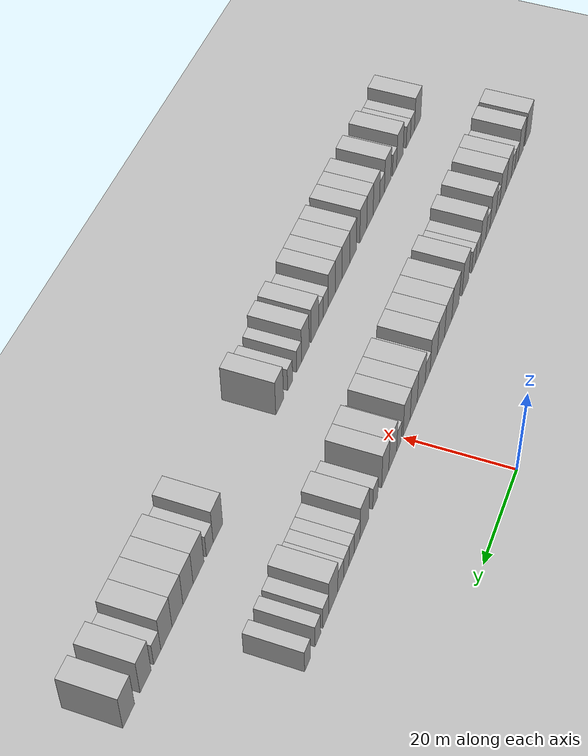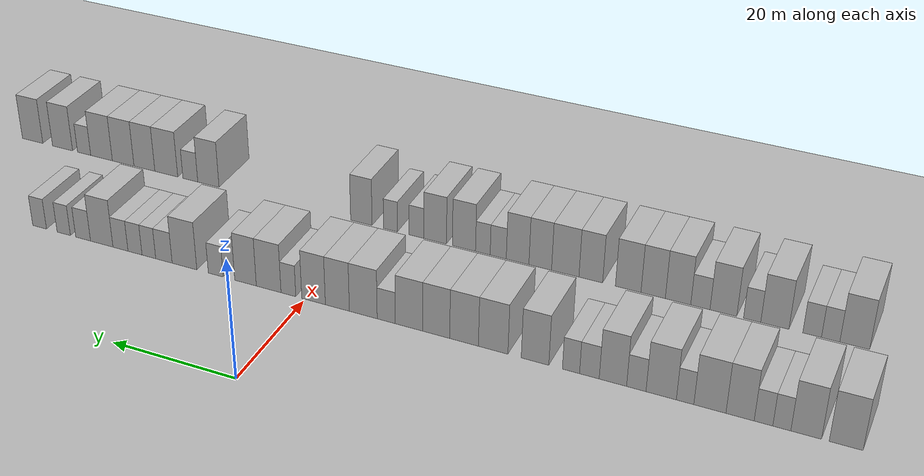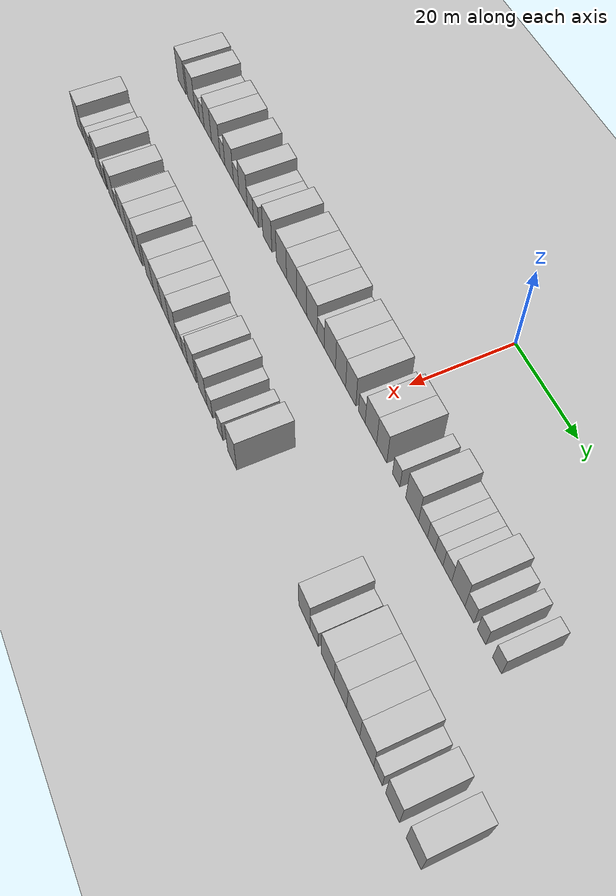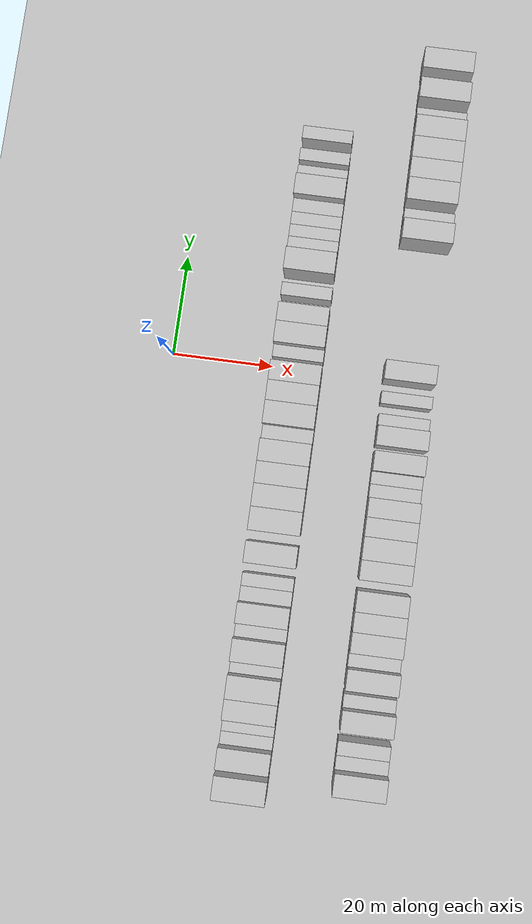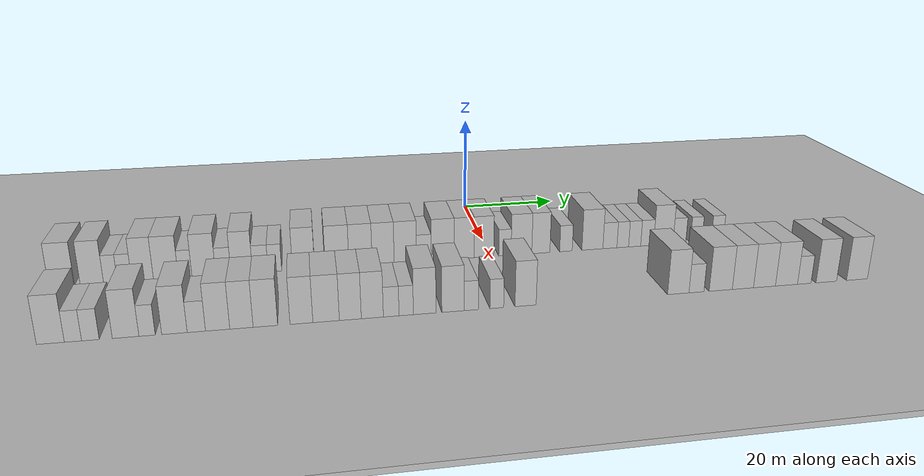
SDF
<sdf version="1.6">
 <world name="default">
  <include><name>ground_plane_1</name><uri>model://HANNAS_ground_plane</uri></include>
  <include>
   <name>ground_plane_2</name>
   <uri>model://HANNAS_ground_plane</uri>
   <pose>100 0 0  0 0 0</pose>
  </include>
  <model name="building_32">
   <static>1</static>
   <pose>25.0000 -79.7604 0 0.000000 0.000000 0.000000</pose>
   <link name="link">
    <pose>0 0 4.50 0 0 0</pose>
    <collision name="collision"><geometry><box><size>10.0000 4.4144 9.0000</size></box></geometry></collision>
    <visual name="visual">
     <cast_shadows>0</cast_shadows>
     <geometry><box><size>10.0000 4.4144 9.0000</size></box></geometry>
     <material>
      <script>
       <uri>model://HANNAS_wall/materials/scripts</uri>
       <uri>model://HANNAS_wall/materials/textures</uri>
       <name>vrc/HANNAS_wall</name>
      </script>
     </material>
    </visual>
   </link>
  </model>
  <model name="building_33">
   <static>1</static>
   <pose>25.0000 -74.5264 0 0.000000 0.000000 0.000000</pose>
   <link name="link">
    <pose>0 0 4.50 0 0 0</pose>
    <collision name="collision"><geometry><box><size>10.0000 4.0536 9.0000</size></box></geometry></collision>
    <visual name="visual">
     <cast_shadows>0</cast_shadows>
     <geometry><box><size>10.0000 4.0536 9.0000</size></box></geometry>
     <material>
      <script>
       <uri>model://HANNAS_wall/materials/scripts</uri>
       <uri>model://HANNAS_wall/materials/textures</uri>
       <name>vrc/HANNAS_wall</name>
      </script>
     </material>
    </visual>
   </link>
  </model>
  <model name="building_34">
   <static>1</static>
   <pose>25.0000 -71.2966 0 0.000000 0.000000 0.000000</pose>
   <link name="link">
    <pose>0 0 3.00 0 0 0</pose>
    <collision name="collision"><geometry><box><size>10.0000 2.4060 6.0000</size></box></geometry></collision>
    <visual name="visual">
     <cast_shadows>0</cast_shadows>
     <geometry><box><size>10.0000 2.4060 6.0000</size></box></geometry>
     <material>
      <script>
       <uri>model://HANNAS_wall/materials/scripts</uri>
       <uri>model://HANNAS_wall/materials/textures</uri>
       <name>vrc/HANNAS_wall</name>
      </script>
     </material>
    </visual>
   </link>
  </model>
  <model name="building_35">
   <static>1</static>
   <pose>25.0000 -68.8379 0 0.000000 0.000000 0.000000</pose>
   <link name="link">
    <pose>0 0 3.00 0 0 0</pose>
    <collision name="collision"><geometry><box><size>10.0000 2.5114 6.0000</size></box></geometry></collision>
    <visual name="visual">
     <cast_shadows>0</cast_shadows>
     <geometry><box><size>10.0000 2.5114 6.0000</size></box></geometry>
     <material>
      <script>
       <uri>model://HANNAS_wall/materials/scripts</uri>
       <uri>model://HANNAS_wall/materials/textures</uri>
       <name>vrc/HANNAS_wall</name>
      </script>
     </material>
    </visual>
   </link>
  </model>
  <model name="building_36">
   <static>1</static>
   <pose>25.0000 -65.6650 0 0.000000 0.000000 0.000000</pose>
   <link name="link">
    <pose>0 0 4.50 0 0 0</pose>
    <collision name="collision"><geometry><box><size>10.0000 3.8343 9.0000</size></box></geometry></collision>
    <visual name="visual">
     <cast_shadows>0</cast_shadows>
     <geometry><box><size>10.0000 3.8343 9.0000</size></box></geometry>
     <material>
      <script>
       <uri>model://HANNAS_wall/materials/scripts</uri>
       <uri>model://HANNAS_wall/materials/textures</uri>
       <name>vrc/HANNAS_wall</name>
      </script>
     </material>
    </visual>
   </link>
  </model>
  <model name="building_37">
   <static>1</static>
   <pose>25.0000 -61.5360 0 0.000000 0.000000 0.000000</pose>
   <link name="link">
    <pose>0 0 4.50 0 0 0</pose>
    <collision name="collision"><geometry><box><size>10.0000 4.4238 9.0000</size></box></geometry></collision>
    <visual name="visual">
     <cast_shadows>0</cast_shadows>
     <geometry><box><size>10.0000 4.4238 9.0000</size></box></geometry>
     <material>
      <script>
       <uri>model://HANNAS_wall/materials/scripts</uri>
       <uri>model://HANNAS_wall/materials/textures</uri>
       <name>vrc/HANNAS_wall</name>
      </script>
     </material>
    </visual>
   </link>
  </model>
  <model name="building_38">
   <static>1</static>
   <pose>25.0000 -58.1043 0 0.000000 0.000000 0.000000</pose>
   <link name="link">
    <pose>0 0 3.00 0 0 0</pose>
    <collision name="collision"><geometry><box><size>10.0000 2.4395 6.0000</size></box></geometry></collision>
    <visual name="visual">
     <cast_shadows>0</cast_shadows>
     <geometry><box><size>10.0000 2.4395 6.0000</size></box></geometry>
     <material>
      <script>
       <uri>model://HANNAS_wall/materials/scripts</uri>
       <uri>model://HANNAS_wall/materials/textures</uri>
       <name>vrc/HANNAS_wall</name>
      </script>
     </material>
    </visual>
   </link>
  </model>
  <model name="building_39">
   <static>1</static>
   <pose>25.0000 -54.7499 0 0.000000 0.000000 0.000000</pose>
   <link name="link">
    <pose>0 0 4.50 0 0 0</pose>
    <collision name="collision"><geometry><box><size>10.0000 4.2694 9.0000</size></box></geometry></collision>
    <visual name="visual">
     <cast_shadows>0</cast_shadows>
     <geometry><box><size>10.0000 4.2694 9.0000</size></box></geometry>
     <material>
      <script>
       <uri>model://HANNAS_wall/materials/scripts</uri>
       <uri>model://HANNAS_wall/materials/textures</uri>
       <name>vrc/HANNAS_wall</name>
      </script>
     </material>
    </visual>
   </link>
  </model>
  <model name="building_40">
   <static>1</static>
   <pose>25.0000 -51.2329 0 0.000000 0.000000 0.000000</pose>
   <link name="link">
    <pose>0 0 3.00 0 0 0</pose>
    <collision name="collision"><geometry><box><size>10.0000 2.7645 6.0000</size></box></geometry></collision>
    <visual name="visual">
     <cast_shadows>0</cast_shadows>
     <geometry><box><size>10.0000 2.7645 6.0000</size></box></geometry>
     <material>
      <script>
       <uri>model://HANNAS_wall/materials/scripts</uri>
       <uri>model://HANNAS_wall/materials/textures</uri>
       <name>vrc/HANNAS_wall</name>
      </script>
     </material>
    </visual>
   </link>
  </model>
  <model name="building_41">
   <static>1</static>
   <pose>25.0000 -47.8789 0 0.000000 0.000000 0.000000</pose>
   <link name="link">
    <pose>0 0 4.50 0 0 0</pose>
    <collision name="collision"><geometry><box><size>10.0000 3.9436 9.0000</size></box></geometry></collision>
    <visual name="visual">
     <cast_shadows>0</cast_shadows>
     <geometry><box><size>10.0000 3.9436 9.0000</size></box></geometry>
     <material>
      <script>
       <uri>model://HANNAS_wall/materials/scripts</uri>
       <uri>model://HANNAS_wall/materials/textures</uri>
       <name>vrc/HANNAS_wall</name>
      </script>
     </material>
    </visual>
   </link>
  </model>
  <model name="building_42">
   <static>1</static>
   <pose>25.0000 -44.4795 0 0.000000 0.000000 0.000000</pose>
   <link name="link">
    <pose>0 0 3.00 0 0 0</pose>
    <collision name="collision"><geometry><box><size>10.0000 2.8552 6.0000</size></box></geometry></collision>
    <visual name="visual">
     <cast_shadows>0</cast_shadows>
     <geometry><box><size>10.0000 2.8552 6.0000</size></box></geometry>
     <material>
      <script>
       <uri>model://HANNAS_wall/materials/scripts</uri>
       <uri>model://HANNAS_wall/materials/textures</uri>
       <name>vrc/HANNAS_wall</name>
      </script>
     </material>
    </visual>
   </link>
  </model>
  <model name="building_43">
   <static>1</static>
   <pose>25.0000 -41.7935 0 0.000000 0.000000 0.000000</pose>
   <link name="link">
    <pose>0 0 3.00 0 0 0</pose>
    <collision name="collision"><geometry><box><size>10.0000 2.5168 6.0000</size></box></geometry></collision>
    <visual name="visual">
     <cast_shadows>0</cast_shadows>
     <geometry><box><size>10.0000 2.5168 6.0000</size></box></geometry>
     <material>
      <script>
       <uri>model://HANNAS_wall/materials/scripts</uri>
       <uri>model://HANNAS_wall/materials/textures</uri>
       <name>vrc/HANNAS_wall</name>
      </script>
     </material>
    </visual>
   </link>
  </model>
  <model name="building_44">
   <static>1</static>
   <pose>25.0000 -36.4770 0 0.000000 0.000000 0.000000</pose>
   <link name="link">
    <pose>0 0 4.50 0 0 0</pose>
    <collision name="collision"><geometry><box><size>10.0000 4.1163 9.0000</size></box></geometry></collision>
    <visual name="visual">
     <cast_shadows>0</cast_shadows>
     <geometry><box><size>10.0000 4.1163 9.0000</size></box></geometry>
     <material>
      <script>
       <uri>model://HANNAS_wall/materials/scripts</uri>
       <uri>model://HANNAS_wall/materials/textures</uri>
       <name>vrc/HANNAS_wall</name>
      </script>
     </material>
    </visual>
   </link>
  </model>
  <model name="building_45">
   <static>1</static>
   <pose>25.0000 -30.1749 0 0.000000 0.000000 0.000000</pose>
   <link name="link">
    <pose>0 0 4.50 0 0 0</pose>
    <collision name="collision"><geometry><box><size>10.0000 4.4879 9.0000</size></box></geometry></collision>
    <visual name="visual">
     <cast_shadows>0</cast_shadows>
     <geometry><box><size>10.0000 4.4879 9.0000</size></box></geometry>
     <material>
      <script>
       <uri>model://HANNAS_wall/materials/scripts</uri>
       <uri>model://HANNAS_wall/materials/textures</uri>
       <name>vrc/HANNAS_wall</name>
      </script>
     </material>
    </visual>
   </link>
  </model>
  <model name="building_46">
   <static>1</static>
   <pose>25.0000 -25.7231 0 0.000000 0.000000 0.000000</pose>
   <link name="link">
    <pose>0 0 4.50 0 0 0</pose>
    <collision name="collision"><geometry><box><size>10.0000 4.4156 9.0000</size></box></geometry></collision>
    <visual name="visual">
     <cast_shadows>0</cast_shadows>
     <geometry><box><size>10.0000 4.4156 9.0000</size></box></geometry>
     <material>
      <script>
       <uri>model://HANNAS_wall/materials/scripts</uri>
       <uri>model://HANNAS_wall/materials/textures</uri>
       <name>vrc/HANNAS_wall</name>
      </script>
     </material>
    </visual>
   </link>
  </model>
  <model name="building_47">
   <static>1</static>
   <pose>25.0000 -21.4024 0 0.000000 0.000000 0.000000</pose>
   <link name="link">
    <pose>0 0 4.50 0 0 0</pose>
    <collision name="collision"><geometry><box><size>10.0000 4.2259 9.0000</size></box></geometry></collision>
    <visual name="visual">
     <cast_shadows>0</cast_shadows>
     <geometry><box><size>10.0000 4.2259 9.0000</size></box></geometry>
     <material>
      <script>
       <uri>model://HANNAS_wall/materials/scripts</uri>
       <uri>model://HANNAS_wall/materials/textures</uri>
       <name>vrc/HANNAS_wall</name>
      </script>
     </material>
    </visual>
   </link>
  </model>
  <model name="building_48">
   <static>1</static>
   <pose>25.0000 -17.1323 0 0.000000 0.000000 0.000000</pose>
   <link name="link">
    <pose>0 0 4.50 0 0 0</pose>
    <collision name="collision"><geometry><box><size>10.0000 4.3141 9.0000</size></box></geometry></collision>
    <visual name="visual">
     <cast_shadows>0</cast_shadows>
     <geometry><box><size>10.0000 4.3141 9.0000</size></box></geometry>
     <material>
      <script>
       <uri>model://HANNAS_wall/materials/scripts</uri>
       <uri>model://HANNAS_wall/materials/textures</uri>
       <name>vrc/HANNAS_wall</name>
      </script>
     </material>
    </visual>
   </link>
  </model>
  <model name="building_49">
   <static>1</static>
   <pose>25.0000 -13.5283 0 0.000000 0.000000 0.000000</pose>
   <link name="link">
    <pose>0 0 3.00 0 0 0</pose>
    <collision name="collision"><geometry><box><size>10.0000 2.8940 6.0000</size></box></geometry></collision>
    <visual name="visual">
     <cast_shadows>0</cast_shadows>
     <geometry><box><size>10.0000 2.8940 6.0000</size></box></geometry>
     <material>
      <script>
       <uri>model://HANNAS_wall/materials/scripts</uri>
       <uri>model://HANNAS_wall/materials/textures</uri>
       <name>vrc/HANNAS_wall</name>
      </script>
     </material>
    </visual>
   </link>
  </model>
  <model name="building_50">
   <static>1</static>
   <pose>25.0000 -9.8389 0 0.000000 0.000000 0.000000</pose>
   <link name="link">
    <pose>0 0 4.50 0 0 0</pose>
    <collision name="collision"><geometry><box><size>10.0000 4.4849 9.0000</size></box></geometry></collision>
    <visual name="visual">
     <cast_shadows>0</cast_shadows>
     <geometry><box><size>10.0000 4.4849 9.0000</size></box></geometry>
     <material>
      <script>
       <uri>model://HANNAS_wall/materials/scripts</uri>
       <uri>model://HANNAS_wall/materials/textures</uri>
       <name>vrc/HANNAS_wall</name>
      </script>
     </material>
    </visual>
   </link>
  </model>
  <model name="building_51">
   <static>1</static>
   <pose>25.0000 -5.6319 0 0.000000 0.000000 0.000000</pose>
   <link name="link">
    <pose>0 0 4.50 0 0 0</pose>
    <collision name="collision"><geometry><box><size>10.0000 3.9292 9.0000</size></box></geometry></collision>
    <visual name="visual">
     <cast_shadows>0</cast_shadows>
     <geometry><box><size>10.0000 3.9292 9.0000</size></box></geometry>
     <material>
      <script>
       <uri>model://HANNAS_wall/materials/scripts</uri>
       <uri>model://HANNAS_wall/materials/textures</uri>
       <name>vrc/HANNAS_wall</name>
      </script>
     </material>
    </visual>
   </link>
  </model>
  <model name="building_52">
   <static>1</static>
   <pose>25.0000 -1.7157 0 0.000000 0.000000 0.000000</pose>
   <link name="link">
    <pose>0 0 4.50 0 0 0</pose>
    <collision name="collision"><geometry><box><size>10.0000 3.9032 9.0000</size></box></geometry></collision>
    <visual name="visual">
     <cast_shadows>0</cast_shadows>
     <geometry><box><size>10.0000 3.9032 9.0000</size></box></geometry>
     <material>
      <script>
       <uri>model://HANNAS_wall/materials/scripts</uri>
       <uri>model://HANNAS_wall/materials/textures</uri>
       <name>vrc/HANNAS_wall</name>
      </script>
     </material>
    </visual>
   </link>
  </model>
  <model name="building_53">
   <static>1</static>
   <pose>25.0000 2.4711 0 0.000000 0.000000 0.000000</pose>
   <link name="link">
    <pose>0 0 3.00 0 0 0</pose>
    <collision name="collision"><geometry><box><size>10.0000 2.4704 6.0000</size></box></geometry></collision>
    <visual name="visual">
     <cast_shadows>0</cast_shadows>
     <geometry><box><size>10.0000 2.4704 6.0000</size></box></geometry>
     <material>
      <script>
       <uri>model://HANNAS_wall/materials/scripts</uri>
       <uri>model://HANNAS_wall/materials/textures</uri>
       <name>vrc/HANNAS_wall</name>
      </script>
     </material>
    </visual>
   </link>
  </model>
  <model name="building_54">
   <static>1</static>
   <pose>25.0000 5.7965 0 0.000000 0.000000 0.000000</pose>
   <link name="link">
    <pose>0 0 4.50 0 0 0</pose>
    <collision name="collision"><geometry><box><size>10.0000 4.1805 9.0000</size></box></geometry></collision>
    <visual name="visual">
     <cast_shadows>0</cast_shadows>
     <geometry><box><size>10.0000 4.1805 9.0000</size></box></geometry>
     <material>
      <script>
       <uri>model://HANNAS_wall/materials/scripts</uri>
       <uri>model://HANNAS_wall/materials/textures</uri>
       <name>vrc/HANNAS_wall</name>
      </script>
     </material>
    </visual>
   </link>
  </model>
  <model name="building_55">
   <static>1</static>
   <pose>25.0000 9.7286 0 0.000000 0.000000 0.000000</pose>
   <link name="link">
    <pose>0 0 4.50 0 0 0</pose>
    <collision name="collision"><geometry><box><size>10.0000 3.6836 9.0000</size></box></geometry></collision>
    <visual name="visual">
     <cast_shadows>0</cast_shadows>
     <geometry><box><size>10.0000 3.6836 9.0000</size></box></geometry>
     <material>
      <script>
       <uri>model://HANNAS_wall/materials/scripts</uri>
       <uri>model://HANNAS_wall/materials/textures</uri>
       <name>vrc/HANNAS_wall</name>
      </script>
     </material>
    </visual>
   </link>
  </model>
  <model name="building_56">
   <static>1</static>
   <pose>25.0000 14.8592 0 0.000000 0.000000 0.000000</pose>
   <link name="link">
    <pose>0 0 3.00 0 0 0</pose>
    <collision name="collision"><geometry><box><size>10.0000 2.5777 6.0000</size></box></geometry></collision>
    <visual name="visual">
     <cast_shadows>0</cast_shadows>
     <geometry><box><size>10.0000 2.5777 6.0000</size></box></geometry>
     <material>
      <script>
       <uri>model://HANNAS_wall/materials/scripts</uri>
       <uri>model://HANNAS_wall/materials/textures</uri>
       <name>vrc/HANNAS_wall</name>
      </script>
     </material>
    </visual>
   </link>
  </model>
  <model name="building_57">
   <static>1</static>
   <pose>25.0000 20.3237 0 0.000000 0.000000 0.000000</pose>
   <link name="link">
    <pose>0 0 4.50 0 0 0</pose>
    <collision name="collision"><geometry><box><size>10.0000 4.3511 9.0000</size></box></geometry></collision>
    <visual name="visual">
     <cast_shadows>0</cast_shadows>
     <geometry><box><size>10.0000 4.3511 9.0000</size></box></geometry>
     <material>
      <script>
       <uri>model://HANNAS_wall/materials/scripts</uri>
       <uri>model://HANNAS_wall/materials/textures</uri>
       <name>vrc/HANNAS_wall</name>
      </script>
     </material>
    </visual>
   </link>
  </model>
  <model name="building_58">
   <static>1</static>
   <pose>25.0000 23.9629 0 0.000000 0.000000 0.000000</pose>
   <link name="link">
    <pose>0 0 3.00 0 0 0</pose>
    <collision name="collision"><geometry><box><size>10.0000 2.9274 6.0000</size></box></geometry></collision>
    <visual name="visual">
     <cast_shadows>0</cast_shadows>
     <geometry><box><size>10.0000 2.9274 6.0000</size></box></geometry>
     <material>
      <script>
       <uri>model://HANNAS_wall/materials/scripts</uri>
       <uri>model://HANNAS_wall/materials/textures</uri>
       <name>vrc/HANNAS_wall</name>
      </script>
     </material>
    </visual>
   </link>
  </model>
  <model name="building_59">
   <static>1</static>
   <pose>25.0000 26.6528 0 0.000000 0.000000 0.000000</pose>
   <link name="link">
    <pose>0 0 3.00 0 0 0</pose>
    <collision name="collision"><geometry><box><size>10.0000 2.4523 6.0000</size></box></geometry></collision>
    <visual name="visual">
     <cast_shadows>0</cast_shadows>
     <geometry><box><size>10.0000 2.4523 6.0000</size></box></geometry>
     <material>
      <script>
       <uri>model://HANNAS_wall/materials/scripts</uri>
       <uri>model://HANNAS_wall/materials/textures</uri>
       <name>vrc/HANNAS_wall</name>
      </script>
     </material>
    </visual>
   </link>
  </model>
  <model name="building_60">
   <static>1</static>
   <pose>25.0000 29.1491 0 0.000000 0.000000 0.000000</pose>
   <link name="link">
    <pose>0 0 3.00 0 0 0</pose>
    <collision name="collision"><geometry><box><size>10.0000 2.5403 6.0000</size></box></geometry></collision>
    <visual name="visual">
     <cast_shadows>0</cast_shadows>
     <geometry><box><size>10.0000 2.5403 6.0000</size></box></geometry>
     <material>
      <script>
       <uri>model://HANNAS_wall/materials/scripts</uri>
       <uri>model://HANNAS_wall/materials/textures</uri>
       <name>vrc/HANNAS_wall</name>
      </script>
     </material>
    </visual>
   </link>
  </model>
  <model name="building_61">
   <static>1</static>
   <pose>25.0000 31.7835 0 0.000000 0.000000 0.000000</pose>
   <link name="link">
    <pose>0 0 3.00 0 0 0</pose>
    <collision name="collision"><geometry><box><size>10.0000 2.7285 6.0000</size></box></geometry></collision>
    <visual name="visual">
     <cast_shadows>0</cast_shadows>
     <geometry><box><size>10.0000 2.7285 6.0000</size></box></geometry>
     <material>
      <script>
       <uri>model://HANNAS_wall/materials/scripts</uri>
       <uri>model://HANNAS_wall/materials/textures</uri>
       <name>vrc/HANNAS_wall</name>
      </script>
     </material>
    </visual>
   </link>
  </model>
  <model name="building_62">
   <static>1</static>
   <pose>25.0000 35.2118 0 0.000000 0.000000 0.000000</pose>
   <link name="link">
    <pose>0 0 4.50 0 0 0</pose>
    <collision name="collision"><geometry><box><size>10.0000 4.1281 9.0000</size></box></geometry></collision>
    <visual name="visual">
     <cast_shadows>0</cast_shadows>
     <geometry><box><size>10.0000 4.1281 9.0000</size></box></geometry>
     <material>
      <script>
       <uri>model://HANNAS_wall/materials/scripts</uri>
       <uri>model://HANNAS_wall/materials/textures</uri>
       <name>vrc/HANNAS_wall</name>
      </script>
     </material>
    </visual>
   </link>
  </model>
  <model name="building_63">
   <static>1</static>
   <pose>25.0000 38.6452 0 0.000000 0.000000 0.000000</pose>
   <link name="link">
    <pose>0 0 3.00 0 0 0</pose>
    <collision name="collision"><geometry><box><size>10.0000 2.7387 6.0000</size></box></geometry></collision>
    <visual name="visual">
     <cast_shadows>0</cast_shadows>
     <geometry><box><size>10.0000 2.7387 6.0000</size></box></geometry>
     <material>
      <script>
       <uri>model://HANNAS_wall/materials/scripts</uri>
       <uri>model://HANNAS_wall/materials/textures</uri>
       <name>vrc/HANNAS_wall</name>
      </script>
     </material>
    </visual>
   </link>
  </model>
  <model name="building_64">
   <static>1</static>
   <pose>25.0000 42.2577 0 0.000000 0.000000 0.000000</pose>
   <link name="link">
    <pose>0 0 3.00 0 0 0</pose>
    <collision name="collision"><geometry><box><size>10.0000 2.4863 6.0000</size></box></geometry></collision>
    <visual name="visual">
     <cast_shadows>0</cast_shadows>
     <geometry><box><size>10.0000 2.4863 6.0000</size></box></geometry>
     <material>
      <script>
       <uri>model://HANNAS_wall/materials/scripts</uri>
       <uri>model://HANNAS_wall/materials/textures</uri>
       <name>vrc/HANNAS_wall</name>
      </script>
     </material>
    </visual>
   </link>
  </model>
  <model name="building_65">
   <static>1</static>
   <pose>25.0000 46.8011 0 0.000000 0.000000 0.000000</pose>
   <link name="link">
    <pose>0 0 3.00 0 0 0</pose>
    <collision name="collision"><geometry><box><size>10.0000 2.6005 6.0000</size></box></geometry></collision>
    <visual name="visual">
     <cast_shadows>0</cast_shadows>
     <geometry><box><size>10.0000 2.6005 6.0000</size></box></geometry>
     <material>
      <script>
       <uri>model://HANNAS_wall/materials/scripts</uri>
       <uri>model://HANNAS_wall/materials/textures</uri>
       <name>vrc/HANNAS_wall</name>
      </script>
     </material>
    </visual>
   </link>
  </model>
  <model name="building_132">
   <static>1</static>
   <pose>47.0000 -76.4281 0 0.000000 0.000000 0.000000</pose>
   <link name="link">
    <pose>0 0 4.50 0 0 0</pose>
    <collision name="collision"><geometry><box><size>10.0000 4.2010 9.0000</size></box></geometry></collision>
    <visual name="visual">
     <cast_shadows>0</cast_shadows>
     <geometry><box><size>10.0000 4.2010 9.0000</size></box></geometry>
     <material>
      <script>
       <uri>model://HANNAS_wall/materials/scripts</uri>
       <uri>model://HANNAS_wall/materials/textures</uri>
       <name>vrc/HANNAS_wall</name>
      </script>
     </material>
    </visual>
   </link>
  </model>
  <model name="building_133">
   <static>1</static>
   <pose>47.0000 -73.0241 0 0.000000 0.000000 0.000000</pose>
   <link name="link">
    <pose>0 0 3.00 0 0 0</pose>
    <collision name="collision"><geometry><box><size>10.0000 2.6071 6.0000</size></box></geometry></collision>
    <visual name="visual">
     <cast_shadows>0</cast_shadows>
     <geometry><box><size>10.0000 2.6071 6.0000</size></box></geometry>
     <material>
      <script>
       <uri>model://HANNAS_wall/materials/scripts</uri>
       <uri>model://HANNAS_wall/materials/textures</uri>
       <name>vrc/HANNAS_wall</name>
      </script>
     </material>
    </visual>
   </link>
  </model>
  <model name="building_134">
   <static>1</static>
   <pose>47.0000 -70.3789 0 0.000000 0.000000 0.000000</pose>
   <link name="link">
    <pose>0 0 3.00 0 0 0</pose>
    <collision name="collision"><geometry><box><size>10.0000 2.6831 6.0000</size></box></geometry></collision>
    <visual name="visual">
     <cast_shadows>0</cast_shadows>
     <geometry><box><size>10.0000 2.6831 6.0000</size></box></geometry>
     <material>
      <script>
       <uri>model://HANNAS_wall/materials/scripts</uri>
       <uri>model://HANNAS_wall/materials/textures</uri>
       <name>vrc/HANNAS_wall</name>
      </script>
     </material>
    </visual>
   </link>
  </model>
  <model name="building_135">
   <static>1</static>
   <pose>47.0000 -64.9875 0 0.000000 0.000000 0.000000</pose>
   <link name="link">
    <pose>0 0 4.50 0 0 0</pose>
    <collision name="collision"><geometry><box><size>10.0000 4.0997 9.0000</size></box></geometry></collision>
    <visual name="visual">
     <cast_shadows>0</cast_shadows>
     <geometry><box><size>10.0000 4.0997 9.0000</size></box></geometry>
     <material>
      <script>
       <uri>model://HANNAS_wall/materials/scripts</uri>
       <uri>model://HANNAS_wall/materials/textures</uri>
       <name>vrc/HANNAS_wall</name>
      </script>
     </material>
    </visual>
   </link>
  </model>
  <model name="building_136">
   <static>1</static>
   <pose>47.0000 -61.6696 0 0.000000 0.000000 0.000000</pose>
   <link name="link">
    <pose>0 0 3.00 0 0 0</pose>
    <collision name="collision"><geometry><box><size>10.0000 2.5362 6.0000</size></box></geometry></collision>
    <visual name="visual">
     <cast_shadows>0</cast_shadows>
     <geometry><box><size>10.0000 2.5362 6.0000</size></box></geometry>
     <material>
      <script>
       <uri>model://HANNAS_wall/materials/scripts</uri>
       <uri>model://HANNAS_wall/materials/textures</uri>
       <name>vrc/HANNAS_wall</name>
      </script>
     </material>
    </visual>
   </link>
  </model>
  <model name="building_137">
   <static>1</static>
   <pose>47.0000 -57.4065 0 0.000000 0.000000 0.000000</pose>
   <link name="link">
    <pose>0 0 4.50 0 0 0</pose>
    <collision name="collision"><geometry><box><size>10.0000 3.9900 9.0000</size></box></geometry></collision>
    <visual name="visual">
     <cast_shadows>0</cast_shadows>
     <geometry><box><size>10.0000 3.9900 9.0000</size></box></geometry>
     <material>
      <script>
       <uri>model://HANNAS_wall/materials/scripts</uri>
       <uri>model://HANNAS_wall/materials/textures</uri>
       <name>vrc/HANNAS_wall</name>
      </script>
     </material>
    </visual>
   </link>
  </model>
  <model name="building_138">
   <static>1</static>
   <pose>47.0000 -53.9627 0 0.000000 0.000000 0.000000</pose>
   <link name="link">
    <pose>0 0 3.00 0 0 0</pose>
    <collision name="collision"><geometry><box><size>10.0000 2.8976 6.0000</size></box></geometry></collision>
    <visual name="visual">
     <cast_shadows>0</cast_shadows>
     <geometry><box><size>10.0000 2.8976 6.0000</size></box></geometry>
     <material>
      <script>
       <uri>model://HANNAS_wall/materials/scripts</uri>
       <uri>model://HANNAS_wall/materials/textures</uri>
       <name>vrc/HANNAS_wall</name>
      </script>
     </material>
    </visual>
   </link>
  </model>
  <model name="building_139">
   <static>1</static>
   <pose>47.0000 -50.5815 0 0.000000 0.000000 0.000000</pose>
   <link name="link">
    <pose>0 0 4.50 0 0 0</pose>
    <collision name="collision"><geometry><box><size>10.0000 3.8648 9.0000</size></box></geometry></collision>
    <visual name="visual">
     <cast_shadows>0</cast_shadows>
     <geometry><box><size>10.0000 3.8648 9.0000</size></box></geometry>
     <material>
      <script>
       <uri>model://HANNAS_wall/materials/scripts</uri>
       <uri>model://HANNAS_wall/materials/textures</uri>
       <name>vrc/HANNAS_wall</name>
      </script>
     </material>
    </visual>
   </link>
  </model>
  <model name="building_140">
   <static>1</static>
   <pose>47.0000 -46.7794 0 0.000000 0.000000 0.000000</pose>
   <link name="link">
    <pose>0 0 4.50 0 0 0</pose>
    <collision name="collision"><geometry><box><size>10.0000 3.7393 9.0000</size></box></geometry></collision>
    <visual name="visual">
     <cast_shadows>0</cast_shadows>
     <geometry><box><size>10.0000 3.7393 9.0000</size></box></geometry>
     <material>
      <script>
       <uri>model://HANNAS_wall/materials/scripts</uri>
       <uri>model://HANNAS_wall/materials/textures</uri>
       <name>vrc/HANNAS_wall</name>
      </script>
     </material>
    </visual>
   </link>
  </model>
  <model name="building_141">
   <static>1</static>
   <pose>47.0000 -42.9201 0 0.000000 0.000000 0.000000</pose>
   <link name="link">
    <pose>0 0 4.50 0 0 0</pose>
    <collision name="collision"><geometry><box><size>10.0000 3.9794 9.0000</size></box></geometry></collision>
    <visual name="visual">
     <cast_shadows>0</cast_shadows>
     <geometry><box><size>10.0000 3.9794 9.0000</size></box></geometry>
     <material>
      <script>
       <uri>model://HANNAS_wall/materials/scripts</uri>
       <uri>model://HANNAS_wall/materials/textures</uri>
       <name>vrc/HANNAS_wall</name>
      </script>
     </material>
    </visual>
   </link>
  </model>
  <model name="building_142">
   <static>1</static>
   <pose>47.0000 -37.0588 0 0.000000 0.000000 0.000000</pose>
   <link name="link">
    <pose>0 0 4.50 0 0 0</pose>
    <collision name="collision"><geometry><box><size>10.0000 3.7432 9.0000</size></box></geometry></collision>
    <visual name="visual">
     <cast_shadows>0</cast_shadows>
     <geometry><box><size>10.0000 3.7432 9.0000</size></box></geometry>
     <material>
      <script>
       <uri>model://HANNAS_wall/materials/scripts</uri>
       <uri>model://HANNAS_wall/materials/textures</uri>
       <name>vrc/HANNAS_wall</name>
      </script>
     </material>
    </visual>
   </link>
  </model>
  <model name="building_143">
   <static>1</static>
   <pose>47.0000 -32.9975 0 0.000000 0.000000 0.000000</pose>
   <link name="link">
    <pose>0 0 4.50 0 0 0</pose>
    <collision name="collision"><geometry><box><size>10.0000 4.3793 9.0000</size></box></geometry></collision>
    <visual name="visual">
     <cast_shadows>0</cast_shadows>
     <geometry><box><size>10.0000 4.3793 9.0000</size></box></geometry>
     <material>
      <script>
       <uri>model://HANNAS_wall/materials/scripts</uri>
       <uri>model://HANNAS_wall/materials/textures</uri>
       <name>vrc/HANNAS_wall</name>
      </script>
     </material>
    </visual>
   </link>
  </model>
  <model name="building_144">
   <static>1</static>
   <pose>47.0000 -28.9776 0 0.000000 0.000000 0.000000</pose>
   <link name="link">
    <pose>0 0 4.50 0 0 0</pose>
    <collision name="collision"><geometry><box><size>10.0000 3.6605 9.0000</size></box></geometry></collision>
    <visual name="visual">
     <cast_shadows>0</cast_shadows>
     <geometry><box><size>10.0000 3.6605 9.0000</size></box></geometry>
     <material>
      <script>
       <uri>model://HANNAS_wall/materials/scripts</uri>
       <uri>model://HANNAS_wall/materials/textures</uri>
       <name>vrc/HANNAS_wall</name>
      </script>
     </material>
    </visual>
   </link>
  </model>
  <model name="building_145">
   <static>1</static>
   <pose>47.0000 -25.2958 0 0.000000 0.000000 0.000000</pose>
   <link name="link">
    <pose>0 0 4.50 0 0 0</pose>
    <collision name="collision"><geometry><box><size>10.0000 3.7031 9.0000</size></box></geometry></collision>
    <visual name="visual">
     <cast_shadows>0</cast_shadows>
     <geometry><box><size>10.0000 3.7031 9.0000</size></box></geometry>
     <material>
      <script>
       <uri>model://HANNAS_wall/materials/scripts</uri>
       <uri>model://HANNAS_wall/materials/textures</uri>
       <name>vrc/HANNAS_wall</name>
      </script>
     </material>
    </visual>
   </link>
  </model>
  <model name="building_146">
   <static>1</static>
   <pose>47.0000 -22.1189 0 0.000000 0.000000 0.000000</pose>
   <link name="link">
    <pose>0 0 3.00 0 0 0</pose>
    <collision name="collision"><geometry><box><size>10.0000 2.6507 6.0000</size></box></geometry></collision>
    <visual name="visual">
     <cast_shadows>0</cast_shadows>
     <geometry><box><size>10.0000 2.6507 6.0000</size></box></geometry>
     <material>
      <script>
       <uri>model://HANNAS_wall/materials/scripts</uri>
       <uri>model://HANNAS_wall/materials/textures</uri>
       <name>vrc/HANNAS_wall</name>
      </script>
     </material>
    </visual>
   </link>
  </model>
  <model name="building_147">
   <static>1</static>
   <pose>47.0000 -19.5750 0 0.000000 0.000000 0.000000</pose>
   <link name="link">
    <pose>0 0 3.00 0 0 0</pose>
    <collision name="collision"><geometry><box><size>10.0000 2.4372 6.0000</size></box></geometry></collision>
    <visual name="visual">
     <cast_shadows>0</cast_shadows>
     <geometry><box><size>10.0000 2.4372 6.0000</size></box></geometry>
     <material>
      <script>
       <uri>model://HANNAS_wall/materials/scripts</uri>
       <uri>model://HANNAS_wall/materials/textures</uri>
       <name>vrc/HANNAS_wall</name>
      </script>
     </material>
    </visual>
   </link>
  </model>
  <model name="building_148">
   <static>1</static>
   <pose>47.0000 -16.4174 0 0.000000 0.000000 0.000000</pose>
   <link name="link">
    <pose>0 0 4.50 0 0 0</pose>
    <collision name="collision"><geometry><box><size>10.0000 3.8780 9.0000</size></box></geometry></collision>
    <visual name="visual">
     <cast_shadows>0</cast_shadows>
     <geometry><box><size>10.0000 3.8780 9.0000</size></box></geometry>
     <material>
      <script>
       <uri>model://HANNAS_wall/materials/scripts</uri>
       <uri>model://HANNAS_wall/materials/textures</uri>
       <name>vrc/HANNAS_wall</name>
      </script>
     </material>
    </visual>
   </link>
  </model>
  <model name="building_149">
   <static>1</static>
   <pose>47.0000 -11.5620 0 0.000000 0.000000 0.000000</pose>
   <link name="link">
    <pose>0 0 4.50 0 0 0</pose>
    <collision name="collision"><geometry><box><size>10.0000 3.8328 9.0000</size></box></geometry></collision>
    <visual name="visual">
     <cast_shadows>0</cast_shadows>
     <geometry><box><size>10.0000 3.8328 9.0000</size></box></geometry>
     <material>
      <script>
       <uri>model://HANNAS_wall/materials/scripts</uri>
       <uri>model://HANNAS_wall/materials/textures</uri>
       <name>vrc/HANNAS_wall</name>
      </script>
     </material>
    </visual>
   </link>
  </model>
  <model name="building_150">
   <static>1</static>
   <pose>47.0000 -8.3848 0 0.000000 0.000000 0.000000</pose>
   <link name="link">
    <pose>0 0 3.00 0 0 0</pose>
    <collision name="collision"><geometry><box><size>10.0000 2.5216 6.0000</size></box></geometry></collision>
    <visual name="visual">
     <cast_shadows>0</cast_shadows>
     <geometry><box><size>10.0000 2.5216 6.0000</size></box></geometry>
     <material>
      <script>
       <uri>model://HANNAS_wall/materials/scripts</uri>
       <uri>model://HANNAS_wall/materials/textures</uri>
       <name>vrc/HANNAS_wall</name>
      </script>
     </material>
    </visual>
   </link>
  </model>
  <model name="building_151">
   <static>1</static>
   <pose>47.0000 -3.9123 0 0.000000 0.000000 0.000000</pose>
   <link name="link">
    <pose>0 0 3.00 0 0 0</pose>
    <collision name="collision"><geometry><box><size>10.0000 2.4234 6.0000</size></box></geometry></collision>
    <visual name="visual">
     <cast_shadows>0</cast_shadows>
     <geometry><box><size>10.0000 2.4234 6.0000</size></box></geometry>
     <material>
      <script>
       <uri>model://HANNAS_wall/materials/scripts</uri>
       <uri>model://HANNAS_wall/materials/textures</uri>
       <name>vrc/HANNAS_wall</name>
      </script>
     </material>
    </visual>
   </link>
  </model>
  <model name="building_152">
   <static>1</static>
   <pose>47.0000 1.1810 0 0.000000 0.000000 0.000000</pose>
   <link name="link">
    <pose>0 0 4.50 0 0 0</pose>
    <collision name="collision"><geometry><box><size>10.0000 3.7633 9.0000</size></box></geometry></collision>
    <visual name="visual">
     <cast_shadows>0</cast_shadows>
     <geometry><box><size>10.0000 3.7633 9.0000</size></box></geometry>
     <material>
      <script>
       <uri>model://HANNAS_wall/materials/scripts</uri>
       <uri>model://HANNAS_wall/materials/textures</uri>
       <name>vrc/HANNAS_wall</name>
      </script>
     </material>
    </visual>
   </link>
  </model>
  <model name="building_153">
   <static>1</static>
   <pose>47.0000 29.1082 0 0.000000 0.000000 0.000000</pose>
   <link name="link">
    <pose>0 0 4.50 0 0 0</pose>
    <collision name="collision"><geometry><box><size>10.0000 4.0304 9.0000</size></box></geometry></collision>
    <visual name="visual">
     <cast_shadows>0</cast_shadows>
     <geometry><box><size>10.0000 4.0304 9.0000</size></box></geometry>
     <material>
      <script>
       <uri>model://HANNAS_wall/materials/scripts</uri>
       <uri>model://HANNAS_wall/materials/textures</uri>
       <name>vrc/HANNAS_wall</name>
      </script>
     </material>
    </visual>
   </link>
  </model>
  <model name="building_154">
   <static>1</static>
   <pose>47.0000 32.5377 0 0.000000 0.000000 0.000000</pose>
   <link name="link">
    <pose>0 0 3.00 0 0 0</pose>
    <collision name="collision"><geometry><box><size>10.0000 2.8286 6.0000</size></box></geometry></collision>
    <visual name="visual">
     <cast_shadows>0</cast_shadows>
     <geometry><box><size>10.0000 2.8286 6.0000</size></box></geometry>
     <material>
      <script>
       <uri>model://HANNAS_wall/materials/scripts</uri>
       <uri>model://HANNAS_wall/materials/textures</uri>
       <name>vrc/HANNAS_wall</name>
      </script>
     </material>
    </visual>
   </link>
  </model>
  <model name="building_155">
   <static>1</static>
   <pose>47.0000 37.1651 0 0.000000 0.000000 0.000000</pose>
   <link name="link">
    <pose>0 0 4.50 0 0 0</pose>
    <collision name="collision"><geometry><box><size>10.0000 4.4261 9.0000</size></box></geometry></collision>
    <visual name="visual">
     <cast_shadows>0</cast_shadows>
     <geometry><box><size>10.0000 4.4261 9.0000</size></box></geometry>
     <material>
      <script>
       <uri>model://HANNAS_wall/materials/scripts</uri>
       <uri>model://HANNAS_wall/materials/textures</uri>
       <name>vrc/HANNAS_wall</name>
      </script>
     </material>
    </visual>
   </link>
  </model>
  <model name="building_156">
   <static>1</static>
   <pose>47.0000 41.4208 0 0.000000 0.000000 0.000000</pose>
   <link name="link">
    <pose>0 0 4.50 0 0 0</pose>
    <collision name="collision"><geometry><box><size>10.0000 4.0853 9.0000</size></box></geometry></collision>
    <visual name="visual">
     <cast_shadows>0</cast_shadows>
     <geometry><box><size>10.0000 4.0853 9.0000</size></box></geometry>
     <material>
      <script>
       <uri>model://HANNAS_wall/materials/scripts</uri>
       <uri>model://HANNAS_wall/materials/textures</uri>
       <name>vrc/HANNAS_wall</name>
      </script>
     </material>
    </visual>
   </link>
  </model>
  <model name="building_157">
   <static>1</static>
   <pose>47.0000 45.6033 0 0.000000 0.000000 0.000000</pose>
   <link name="link">
    <pose>0 0 4.50 0 0 0</pose>
    <collision name="collision"><geometry><box><size>10.0000 4.2796 9.0000</size></box></geometry></collision>
    <visual name="visual">
     <cast_shadows>0</cast_shadows>
     <geometry><box><size>10.0000 4.2796 9.0000</size></box></geometry>
     <material>
      <script>
       <uri>model://HANNAS_wall/materials/scripts</uri>
       <uri>model://HANNAS_wall/materials/textures</uri>
       <name>vrc/HANNAS_wall</name>
      </script>
     </material>
    </visual>
   </link>
  </model>
  <model name="building_158">
   <static>1</static>
   <pose>47.0000 49.9049 0 0.000000 0.000000 0.000000</pose>
   <link name="link">
    <pose>0 0 4.50 0 0 0</pose>
    <collision name="collision"><geometry><box><size>10.0000 4.3237 9.0000</size></box></geometry></collision>
    <visual name="visual">
     <cast_shadows>0</cast_shadows>
     <geometry><box><size>10.0000 4.3237 9.0000</size></box></geometry>
     <material>
      <script>
       <uri>model://HANNAS_wall/materials/scripts</uri>
       <uri>model://HANNAS_wall/materials/textures</uri>
       <name>vrc/HANNAS_wall</name>
      </script>
     </material>
    </visual>
   </link>
  </model>
  <model name="building_159">
   <static>1</static>
   <pose>47.0000 53.3974 0 0.000000 0.000000 0.000000</pose>
   <link name="link">
    <pose>0 0 3.00 0 0 0</pose>
    <collision name="collision"><geometry><box><size>10.0000 2.6613 6.0000</size></box></geometry></collision>
    <visual name="visual">
     <cast_shadows>0</cast_shadows>
     <geometry><box><size>10.0000 2.6613 6.0000</size></box></geometry>
     <material>
      <script>
       <uri>model://HANNAS_wall/materials/scripts</uri>
       <uri>model://HANNAS_wall/materials/textures</uri>
       <name>vrc/HANNAS_wall</name>
      </script>
     </material>
    </visual>
   </link>
  </model>
  <model name="building_160">
   <static>1</static>
   <pose>47.0000 57.7718 0 0.000000 0.000000 0.000000</pose>
   <link name="link">
    <pose>0 0 4.50 0 0 0</pose>
    <collision name="collision"><geometry><box><size>10.0000 4.0873 9.0000</size></box></geometry></collision>
    <visual name="visual">
     <cast_shadows>0</cast_shadows>
     <geometry><box><size>10.0000 4.0873 9.0000</size></box></geometry>
     <material>
      <script>
       <uri>model://HANNAS_wall/materials/scripts</uri>
       <uri>model://HANNAS_wall/materials/textures</uri>
       <name>vrc/HANNAS_wall</name>
      </script>
     </material>
    </visual>
   </link>
  </model>
  <model name="building_161">
   <static>1</static>
   <pose>47.0000 63.9217 0 0.000000 0.000000 0.000000</pose>
   <link name="link">
    <pose>0 0 4.50 0 0 0</pose>
    <collision name="collision"><geometry><box><size>10.0000 4.2124 9.0000</size></box></geometry></collision>
    <visual name="visual">
     <cast_shadows>0</cast_shadows>
     <geometry><box><size>10.0000 4.2124 9.0000</size></box></geometry>
     <material>
      <script>
       <uri>model://HANNAS_wall/materials/scripts</uri>
       <uri>model://HANNAS_wall/materials/textures</uri>
       <name>vrc/HANNAS_wall</name>
      </script>
     </material>
    </visual>
   </link>
  </model>
 </world>
</sdf>
